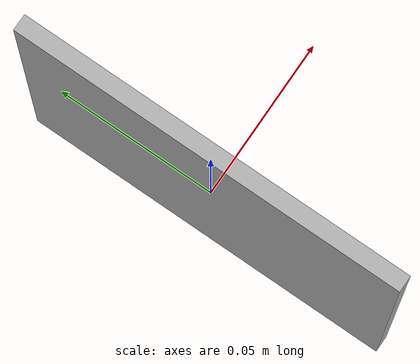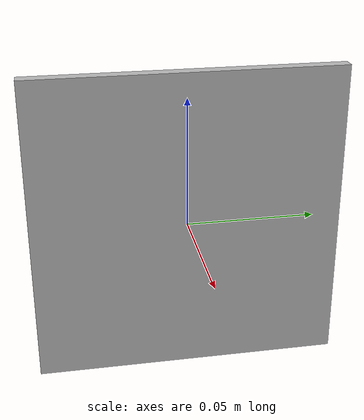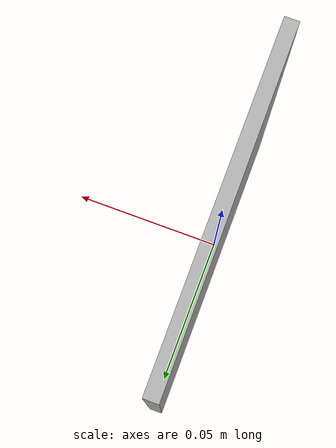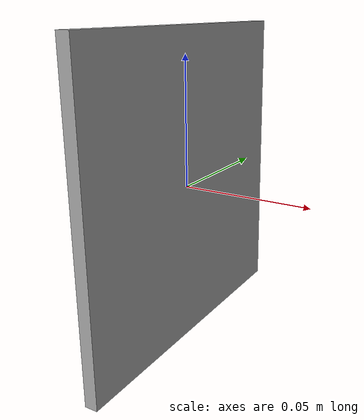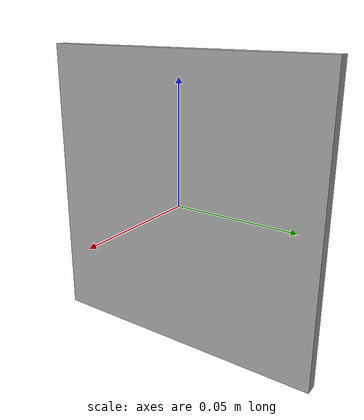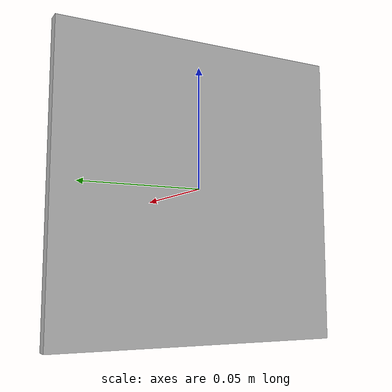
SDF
<?xml version="1.0" ?>
<sdf version="1.6">
  <model name='aruco'>
    <static>true</static>
    <link name="link">
      <visual name="visual">
        <geometry>
          <box>
            <size>0.005 0.12033 0.12033</size>
          </box>
        </geometry>
        <material>
          <lighting>1</lighting>
          <script>
            <uri>model://aruco/materials/scripts</uri>
            <uri>model://aruco/materials/textures</uri>
            <name>aruco160</name>
          </script>
          <shader type='pixel'>
            <normal_map>__default__</normal_map>
          </shader>
          <ambient>0.8 0.8 0.8 1</ambient>
          <diffuse>0.7 0.7 0.7 1</diffuse>
          <specular>0.01 0.01 0.01 1</specular>
          <emissive>0 0 0 1</emissive>
        </material>
      </visual>
    </link>
  </model>
</sdf>
